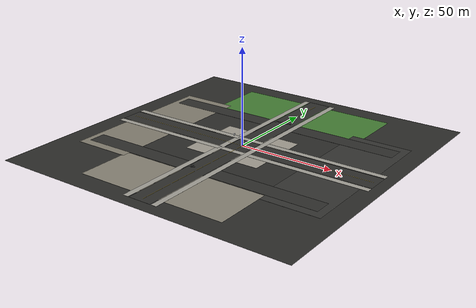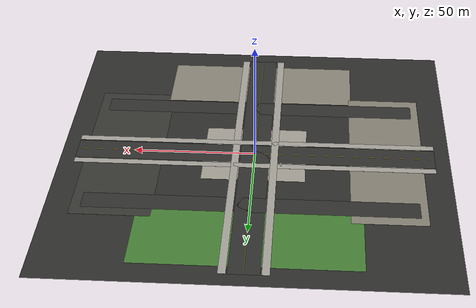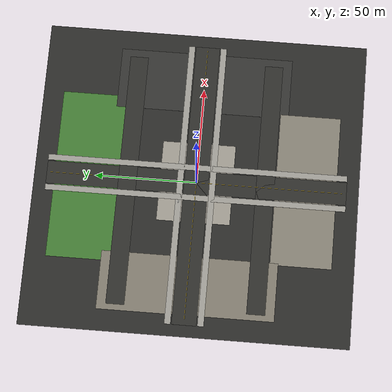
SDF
<sdf version="1.8">
 <world name="medium_city">
  <plugin filename="gz-sim-physics-system" name="gz::sim::systems::Physics"/>
  <plugin filename="gz-sim-user-commands-system" name="gz::sim::systems::UserCommands"/>
  <plugin filename="gz-sim-scene-broadcaster-system" name="gz::sim::systems::SceneBroadcaster"/>
  <plugin filename="gz-sim-sensors-system" name="gz::sim::systems::Sensors">
   <render_engine>ogre2</render_engine>
  </plugin>
  <plugin filename="gz-sim-imu-system" name="gz::sim::systems::Imu"/>
  <light name="sun" type="directional">
   <pose>0 0 80 0 0 0</pose>
   <diffuse>0.93 0.91 0.85 1</diffuse>
   <specular>0.33 0.31 0.28 1</specular>
   <attenuation>
    <range>1200</range>
    <constant>0.9</constant>
    <linear>0.01</linear>
    <quadratic>0.001</quadratic>
   </attenuation>
   <direction>-0.42 0.18 -0.89</direction>
  </light>
  <gravity>0 0 -9.8</gravity>
  <physics type="ode">
   <ode>
    <solver><type>quick</type><iters>60</iters><sor>1.3</sor></solver>
    <constraints>
     <cfm>0</cfm>
     <erp>0.2</erp>
     <contact_max_correcting_vel>100</contact_max_correcting_vel>
     <contact_surface_layer>0.001</contact_surface_layer>
    </constraints>
   </ode>
   <max_step_size>0.01</max_step_size>
   <real_time_factor>1</real_time_factor>
   <real_time_update_rate>120</real_time_update_rate>
  </physics>
  <scene>
   <grid>false</grid>
   <origin_visual>false</origin_visual>
   <ambient>0.50 0.49 0.46 1</ambient>
   <background>0.65 0.71 0.76 1</background>
   <shadows>1</shadows>
  </scene>
  <spherical_coordinates>
   <surface_model>EARTH_WGS84</surface_model>
   <latitude_deg>56.164520029</latitude_deg>
   <longitude_deg>10.1453534275</longitude_deg>
   <elevation>100.0</elevation>
   <heading_deg>0.0</heading_deg>
  </spherical_coordinates>
  <model name="district_base">
   <static>1</static>
   <pose>0 0 -0.035 0 0 0</pose>
   <link name="link">
    <collision name="collision"><geometry><box><size>160 160 0.06</size></box></geometry></collision>
    <visual name="visual">
     <cast_shadows>0</cast_shadows>
     <geometry><box><size>160 160 0.06</size></box></geometry>
     <material>
      <ambient>0.17 0.17 0.16 1</ambient>
      <diffuse>0.17 0.17 0.16 1</diffuse>
      <specular>0.07 0.07 0.07 1</specular>
      <pbr>
       <metal>
        <albedo_map>model://urban_surface/materials/textures/urban_asphalt.png</albedo_map>
        <roughness>0.92</roughness>
        <metalness>0.0</metalness>
       </metal>
      </pbr>
     </material>
    </visual>
   </link>
  </model>
  <model name="civic_plaza">
   <static>1</static>
   <pose>0 0 0.004 0 0 0</pose>
   <link name="link">
    <visual name="visual">
     <cast_shadows>0</cast_shadows>
     <geometry><box><size>42 36 0.014</size></box></geometry>
     <material>
      <ambient>0.62 0.60 0.56 1</ambient>
      <diffuse>0.62 0.60 0.56 1</diffuse>
      <specular>0.08 0.08 0.08 1</specular>
      <pbr>
       <metal>
        <albedo_map>model://urban_surface/materials/textures/plaza_large_tiles.png</albedo_map>
        <roughness>0.82</roughness>
        <metalness>0.0</metalness>
       </metal>
      </pbr>
     </material>
    </visual>
   </link>
  </model>
  <model name="north_residential_green">
   <static>1</static>
   <pose>0 53 0.003 0 0 0</pose>
   <link name="link">
    <visual name="visual">
     <cast_shadows>0</cast_shadows>
     <geometry><box><size>88 34 0.012</size></box></geometry>
     <material>
      <ambient>0.26 0.48 0.20 1</ambient>
      <diffuse>0.26 0.48 0.20 1</diffuse>
      <specular>0.08 0.08 0.08 1</specular>
      <pbr>
       <metal>
        <albedo_map>model://urban_surface/materials/textures/grass_lawn.png</albedo_map>
        <roughness>0.95</roughness>
        <metalness>0.0</metalness>
       </metal>
      </pbr>
     </material>
    </visual>
   </link>
  </model>
  <model name="south_market_square">
   <static>1</static>
   <pose>0 -54 0.006 0 0 0</pose>
   <link name="link">
    <visual name="visual">
     <cast_shadows>0</cast_shadows>
     <geometry><box><size>80 30 0.014</size></box></geometry>
     <material>
      <ambient>0.52 0.50 0.45 1</ambient>
      <diffuse>0.52 0.50 0.45 1</diffuse>
      <specular>0.08 0.08 0.08 1</specular>
      <pbr>
       <metal>
        <albedo_map>model://urban_surface/materials/textures/flagstone_patio.png</albedo_map>
        <roughness>0.86</roughness>
        <metalness>0.0</metalness>
       </metal>
      </pbr>
     </material>
    </visual>
   </link>
  </model>
  <model name="east_parking_apron">
   <static>1</static>
   <pose>54 0 0.005 0 0 0</pose>
   <link name="link">
    <visual name="visual">
     <cast_shadows>0</cast_shadows>
     <geometry><box><size>32 86 0.014</size></box></geometry>
     <material>
      <ambient>0.20 0.20 0.19 1</ambient>
      <diffuse>0.20 0.20 0.19 1</diffuse>
      <specular>0.08 0.08 0.08 1</specular>
      <pbr>
       <metal>
        <albedo_map>model://urban_surface/materials/textures/parking_asphalt.png</albedo_map>
        <roughness>0.9</roughness>
        <metalness>0.0</metalness>
       </metal>
      </pbr>
     </material>
    </visual>
   </link>
  </model>
  <model name="west_residential_pavers">
   <static>1</static>
   <pose>-54 0 0.007 0 0 0</pose>
   <link name="link">
    <visual name="visual">
     <cast_shadows>0</cast_shadows>
     <geometry><box><size>30 86 0.014</size></box></geometry>
     <material>
      <ambient>0.50 0.48 0.43 1</ambient>
      <diffuse>0.50 0.48 0.43 1</diffuse>
      <specular>0.08 0.08 0.08 1</specular>
      <pbr>
       <metal>
        <albedo_map>model://urban_surface/materials/textures/driveway_pavers.png</albedo_map>
        <roughness>0.88</roughness>
        <metalness>0.0</metalness>
       </metal>
      </pbr>
     </material>
    </visual>
   </link>
  </model>
  <model name="north_south_boulevard">
   <static>1</static>
   <pose>0 0 0.012 0 0 0</pose>
   <link name="link">
    <visual name="visual">
     <cast_shadows>0</cast_shadows>
     <geometry><box><size>12 148 0.014</size></box></geometry>
     <material>
      <ambient>0.18 0.18 0.17 1</ambient>
      <diffuse>0.18 0.18 0.17 1</diffuse>
      <specular>0.08 0.08 0.08 1</specular>
      <pbr>
       <metal>
        <albedo_map>model://urban_surface/materials/textures/urban_asphalt.png</albedo_map>
        <roughness>0.92</roughness>
        <metalness>0.0</metalness>
       </metal>
      </pbr>
     </material>
    </visual>
   </link>
  </model>
  <model name="east_west_boulevard">
   <static>1</static>
   <pose>0 0 0.012 0 0 0</pose>
   <link name="link">
    <visual name="visual">
     <cast_shadows>0</cast_shadows>
     <geometry><box><size>148 12 0.014</size></box></geometry>
     <material>
      <ambient>0.18 0.18 0.17 1</ambient>
      <diffuse>0.18 0.18 0.17 1</diffuse>
      <specular>0.08 0.08 0.08 1</specular>
      <pbr>
       <metal>
        <albedo_map>model://urban_surface/materials/textures/urban_asphalt.png</albedo_map>
        <roughness>0.92</roughness>
        <metalness>0.0</metalness>
       </metal>
      </pbr>
     </material>
    </visual>
   </link>
  </model>
  <model name="north_cross_street">
   <static>1</static>
   <pose>0 34 0.012 0 0 0</pose>
   <link name="link">
    <visual name="visual">
     <cast_shadows>0</cast_shadows>
     <geometry><box><size>132 9 0.014</size></box></geometry>
     <material>
      <ambient>0.18 0.18 0.17 1</ambient>
      <diffuse>0.18 0.18 0.17 1</diffuse>
      <specular>0.08 0.08 0.08 1</specular>
      <pbr>
       <metal>
        <albedo_map>model://urban_surface/materials/textures/urban_asphalt.png</albedo_map>
        <roughness>0.92</roughness>
        <metalness>0.0</metalness>
       </metal>
      </pbr>
     </material>
    </visual>
   </link>
  </model>
  <model name="south_cross_street">
   <static>1</static>
   <pose>0 -34 0.012 0 0 0</pose>
   <link name="link">
    <visual name="visual">
     <cast_shadows>0</cast_shadows>
     <geometry><box><size>132 9 0.014</size></box></geometry>
     <material>
      <ambient>0.18 0.18 0.17 1</ambient>
      <diffuse>0.18 0.18 0.17 1</diffuse>
      <specular>0.08 0.08 0.08 1</specular>
      <pbr>
       <metal>
        <albedo_map>model://urban_surface/materials/textures/urban_asphalt.png</albedo_map>
        <roughness>0.92</roughness>
        <metalness>0.0</metalness>
       </metal>
      </pbr>
     </material>
    </visual>
   </link>
  </model>
  <model name="east_sidewalk">
   <static>1</static>
   <pose>8 0 0.018 0 0 0</pose>
   <link name="link">
    <visual name="visual">
     <cast_shadows>0</cast_shadows>
     <geometry><box><size>3 148 0.018</size></box></geometry>
     <material>
      <ambient>0.62 0.61 0.58 1</ambient>
      <diffuse>0.62 0.61 0.58 1</diffuse>
      <specular>0.08 0.08 0.08 1</specular>
      <pbr>
       <metal>
        <albedo_map>model://urban_surface/materials/textures/concrete_sidewalk.png</albedo_map>
        <roughness>0.82</roughness>
        <metalness>0.0</metalness>
       </metal>
      </pbr>
     </material>
    </visual>
   </link>
  </model>
  <model name="west_sidewalk">
   <static>1</static>
   <pose>-8 0 0.018 0 0 0</pose>
   <link name="link">
    <visual name="visual">
     <cast_shadows>0</cast_shadows>
     <geometry><box><size>3 148 0.018</size></box></geometry>
     <material>
      <ambient>0.62 0.61 0.58 1</ambient>
      <diffuse>0.62 0.61 0.58 1</diffuse>
      <specular>0.08 0.08 0.08 1</specular>
      <pbr>
       <metal>
        <albedo_map>model://urban_surface/materials/textures/concrete_sidewalk.png</albedo_map>
        <roughness>0.82</roughness>
        <metalness>0.0</metalness>
       </metal>
      </pbr>
     </material>
    </visual>
   </link>
  </model>
  <model name="north_sidewalk">
   <static>1</static>
   <pose>0 8 0.018 0 0 0</pose>
   <link name="link">
    <visual name="visual">
     <cast_shadows>0</cast_shadows>
     <geometry><box><size>148 3 0.018</size></box></geometry>
     <material>
      <ambient>0.62 0.61 0.58 1</ambient>
      <diffuse>0.62 0.61 0.58 1</diffuse>
      <specular>0.08 0.08 0.08 1</specular>
      <pbr>
       <metal>
        <albedo_map>model://urban_surface/materials/textures/concrete_sidewalk.png</albedo_map>
        <roughness>0.82</roughness>
        <metalness>0.0</metalness>
       </metal>
      </pbr>
     </material>
    </visual>
   </link>
  </model>
  <model name="south_sidewalk">
   <static>1</static>
   <pose>0 -8 0.018 0 0 0</pose>
   <link name="link">
    <visual name="visual">
     <cast_shadows>0</cast_shadows>
     <geometry><box><size>148 3 0.018</size></box></geometry>
     <material>
      <ambient>0.62 0.61 0.58 1</ambient>
      <diffuse>0.62 0.61 0.58 1</diffuse>
      <specular>0.08 0.08 0.08 1</specular>
      <pbr>
       <metal>
        <albedo_map>model://urban_surface/materials/textures/concrete_sidewalk.png</albedo_map>
        <roughness>0.82</roughness>
        <metalness>0.0</metalness>
       </metal>
      </pbr>
     </material>
    </visual>
   </link>
  </model>
  <model name="boulevard_center_line_ns">
   <static>1</static>
   <pose>0 0 0.032 0 0 0</pose>
   <link name="link">
    <visual name="visual">
     <cast_shadows>0</cast_shadows>
     <geometry><box><size>0.14 144 0.01</size></box></geometry>
     <material>
      <ambient>0.95 0.78 0.12 1</ambient>
      <diffuse>0.95 0.78 0.12 1</diffuse>
      <specular>0.05 0.05 0.05 1</specular>
     </material>
    </visual>
   </link>
  </model>
  <model name="boulevard_center_line_ew">
   <static>1</static>
   <pose>0 0 0.032 0 0 0</pose>
   <link name="link">
    <visual name="visual">
     <cast_shadows>0</cast_shadows>
     <geometry><box><size>144 0.14 0.01</size></box></geometry>
     <material>
      <ambient>0.95 0.78 0.12 1</ambient>
      <diffuse>0.95 0.78 0.12 1</diffuse>
      <specular>0.05 0.05 0.05 1</specular>
     </material>
    </visual>
   </link>
  </model>
  <include>
   <static>true</static>
   <name>city_postbox_plaza</name>
   <pose>-11 8 0 0 0 0</pose>
   <uri>model://postbox</uri>
  </include>
 </world>
</sdf>

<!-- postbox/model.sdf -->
<sdf version="1.6">
  <model name="postbox">
    <static>true</static>
    <link name="link">
      <collision name="collision">
        <pose>0 0 0.75 0 0 0</pose>
        <geometry>
          <box>
            <size>0.7 0.5 1.5</size>
          </box>
        </geometry>
      </collision>
      <visual name="visual">
        <geometry>
          <mesh>
            <uri>model://postbox/meshes/postbox.dae</uri>
          </mesh>
        </geometry>
        <material>
          <ambient>1 1 1 1</ambient>
          <diffuse>1 1 1 1</diffuse>
          <pbr>
            <metal>
              <albedo_map>model://postbox/materials/textures/postbox_diffuse.jpg</albedo_map>
              <roughness>0.72</roughness>
              <metalness>0.0</metalness>
            </metal>
          </pbr>
        </material>
      </visual>
    </link>
  </model>
</sdf>
